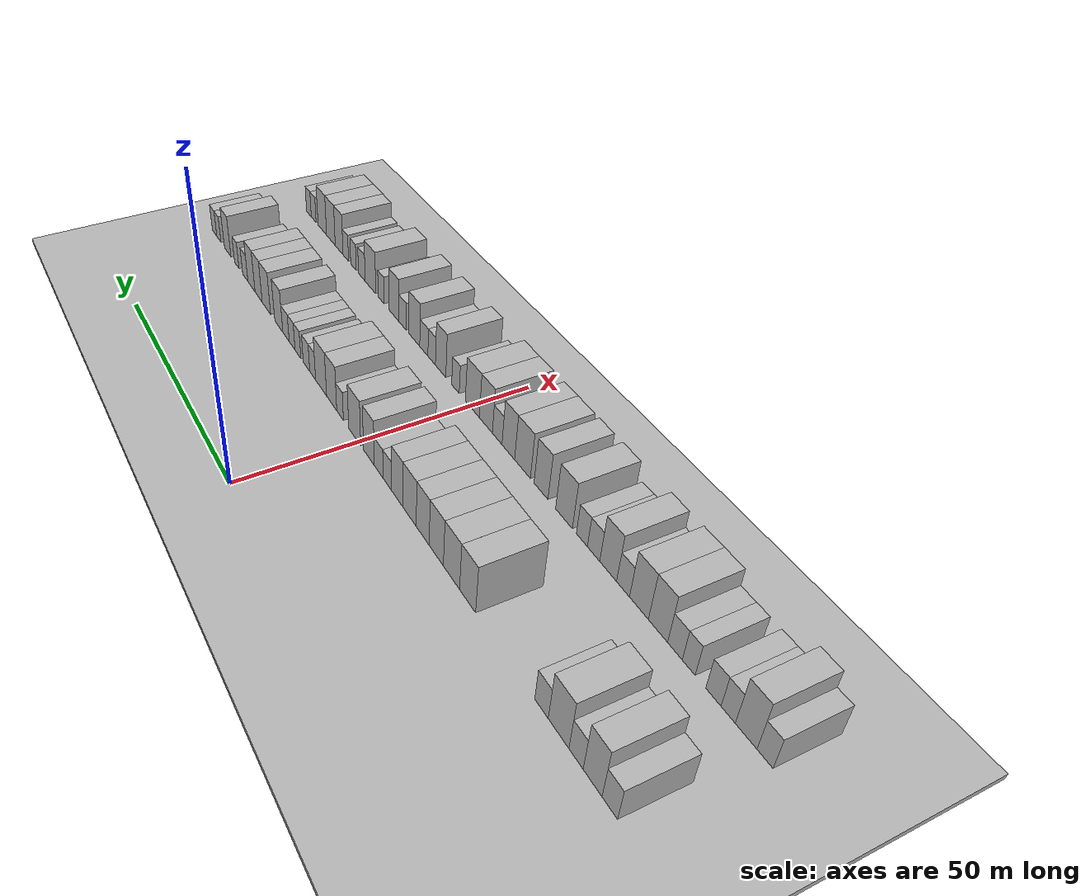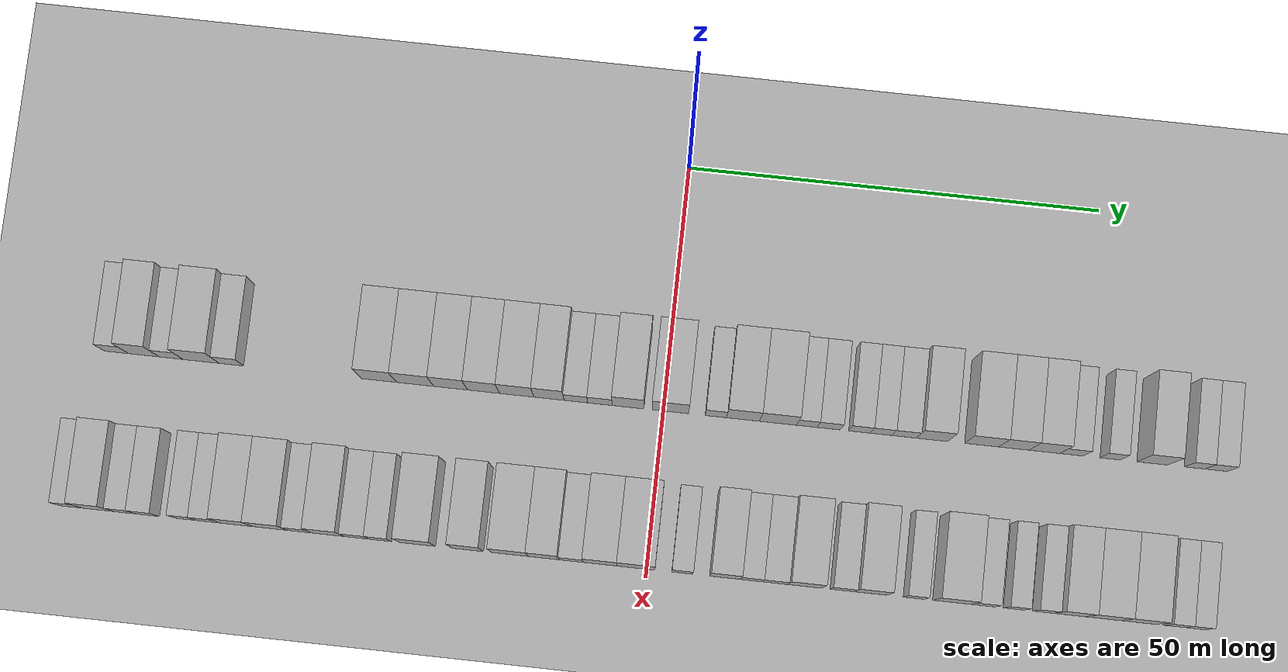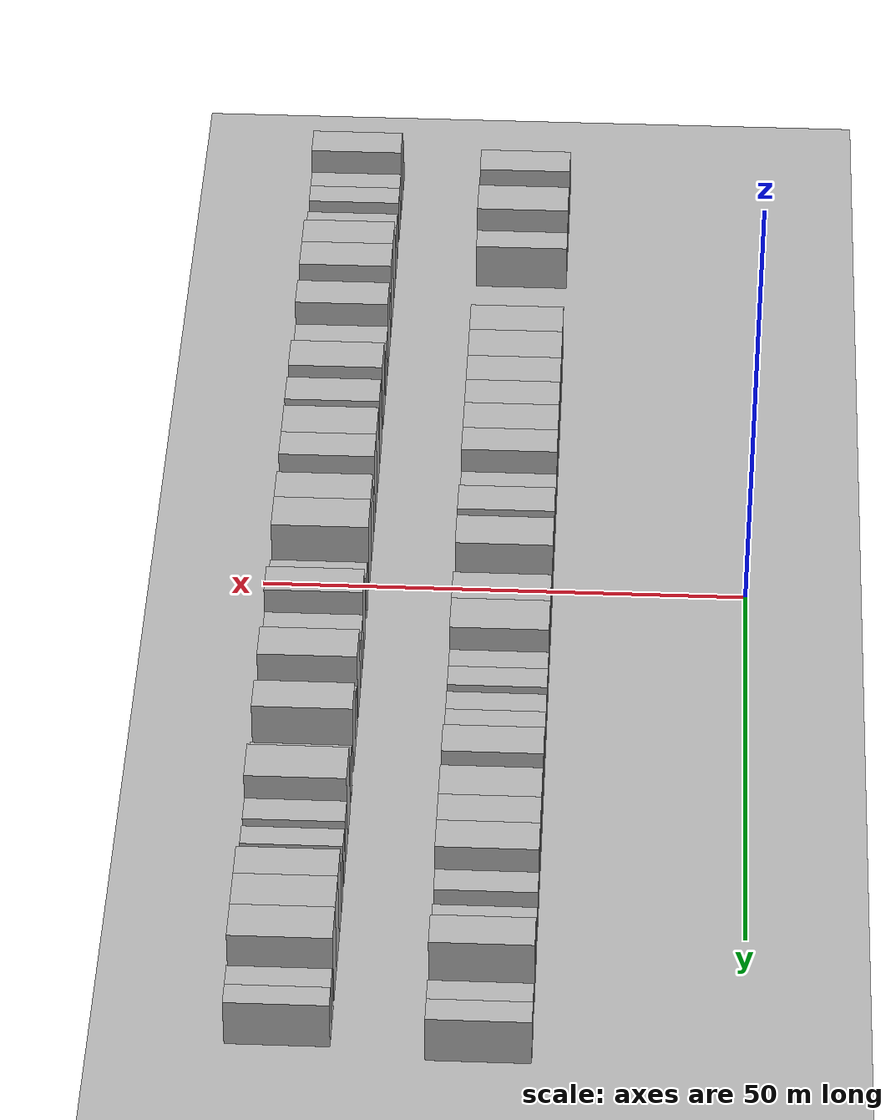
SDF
<sdf version="1.6">
 <world name="default">
  <include><name>ground_plane_1</name><uri>model://HANNAS_ground_plane</uri></include>
  <include>
   <name>ground_plane_2</name>
   <uri>model://HANNAS_ground_plane</uri>
   <pose>100 0 0  0 0 0</pose>
  </include>
  <model name="building_34">
   <static>1</static>
   <pose>25.0000 -66.1217 0 0.000000 0.000000 0.000000</pose>
   <link name="link">
    <pose>0 0 3.00 0 0 0</pose>
    <collision name="collision"><geometry><box><size>10.0000 2.9249 6.0000</size></box></geometry></collision>
    <visual name="visual">
     <cast_shadows>0</cast_shadows>
     <geometry><box><size>10.0000 2.9249 6.0000</size></box></geometry>
     <material>
      <script>
       <uri>model://HANNAS_wall/materials/scripts</uri>
       <uri>model://HANNAS_wall/materials/textures</uri>
       <name>vrc/HANNAS_wall</name>
      </script>
     </material>
    </visual>
   </link>
  </model>
  <model name="building_35">
   <static>1</static>
   <pose>25.0000 -62.8063 0 0.000000 0.000000 0.000000</pose>
   <link name="link">
    <pose>0 0 4.50 0 0 0</pose>
    <collision name="collision"><geometry><box><size>10.0000 3.7059 9.0000</size></box></geometry></collision>
    <visual name="visual">
     <cast_shadows>0</cast_shadows>
     <geometry><box><size>10.0000 3.7059 9.0000</size></box></geometry>
     <material>
      <script>
       <uri>model://HANNAS_wall/materials/scripts</uri>
       <uri>model://HANNAS_wall/materials/textures</uri>
       <name>vrc/HANNAS_wall</name>
      </script>
     </material>
    </visual>
   </link>
  </model>
  <model name="building_36">
   <static>1</static>
   <pose>25.0000 -59.5107 0 0.000000 0.000000 0.000000</pose>
   <link name="link">
    <pose>0 0 3.00 0 0 0</pose>
    <collision name="collision"><geometry><box><size>10.0000 2.8853 6.0000</size></box></geometry></collision>
    <visual name="visual">
     <cast_shadows>0</cast_shadows>
     <geometry><box><size>10.0000 2.8853 6.0000</size></box></geometry>
     <material>
      <script>
       <uri>model://HANNAS_wall/materials/scripts</uri>
       <uri>model://HANNAS_wall/materials/textures</uri>
       <name>vrc/HANNAS_wall</name>
      </script>
     </material>
    </visual>
   </link>
  </model>
  <model name="building_37">
   <static>1</static>
   <pose>25.0000 -55.8811 0 0.000000 0.000000 0.000000</pose>
   <link name="link">
    <pose>0 0 4.50 0 0 0</pose>
    <collision name="collision"><geometry><box><size>10.0000 4.3738 9.0000</size></box></geometry></collision>
    <visual name="visual">
     <cast_shadows>0</cast_shadows>
     <geometry><box><size>10.0000 4.3738 9.0000</size></box></geometry>
     <material>
      <script>
       <uri>model://HANNAS_wall/materials/scripts</uri>
       <uri>model://HANNAS_wall/materials/textures</uri>
       <name>vrc/HANNAS_wall</name>
      </script>
     </material>
    </visual>
   </link>
  </model>
  <model name="building_38">
   <static>1</static>
   <pose>25.0000 -52.2122 0 0.000000 0.000000 0.000000</pose>
   <link name="link">
    <pose>0 0 3.00 0 0 0</pose>
    <collision name="collision"><geometry><box><size>10.0000 2.9640 6.0000</size></box></geometry></collision>
    <visual name="visual">
     <cast_shadows>0</cast_shadows>
     <geometry><box><size>10.0000 2.9640 6.0000</size></box></geometry>
     <material>
      <script>
       <uri>model://HANNAS_wall/materials/scripts</uri>
       <uri>model://HANNAS_wall/materials/textures</uri>
       <name>vrc/HANNAS_wall</name>
      </script>
     </material>
    </visual>
   </link>
  </model>
  <model name="building_39">
   <static>1</static>
   <pose>25.0000 -34.3294 0 0.000000 0.000000 0.000000</pose>
   <link name="link">
    <pose>0 0 4.50 0 0 0</pose>
    <collision name="collision"><geometry><box><size>10.0000 4.2672 9.0000</size></box></geometry></collision>
    <visual name="visual">
     <cast_shadows>0</cast_shadows>
     <geometry><box><size>10.0000 4.2672 9.0000</size></box></geometry>
     <material>
      <script>
       <uri>model://HANNAS_wall/materials/scripts</uri>
       <uri>model://HANNAS_wall/materials/textures</uri>
       <name>vrc/HANNAS_wall</name>
      </script>
     </material>
    </visual>
   </link>
  </model>
  <model name="building_40">
   <static>1</static>
   <pose>25.0000 -29.9537 0 0.000000 0.000000 0.000000</pose>
   <link name="link">
    <pose>0 0 4.50 0 0 0</pose>
    <collision name="collision"><geometry><box><size>10.0000 4.4841 9.0000</size></box></geometry></collision>
    <visual name="visual">
     <cast_shadows>0</cast_shadows>
     <geometry><box><size>10.0000 4.4841 9.0000</size></box></geometry>
     <material>
      <script>
       <uri>model://HANNAS_wall/materials/scripts</uri>
       <uri>model://HANNAS_wall/materials/textures</uri>
       <name>vrc/HANNAS_wall</name>
      </script>
     </material>
    </visual>
   </link>
  </model>
  <model name="building_41">
   <static>1</static>
   <pose>25.0000 -25.6573 0 0.000000 0.000000 0.000000</pose>
   <link name="link">
    <pose>0 0 4.50 0 0 0</pose>
    <collision name="collision"><geometry><box><size>10.0000 4.1088 9.0000</size></box></geometry></collision>
    <visual name="visual">
     <cast_shadows>0</cast_shadows>
     <geometry><box><size>10.0000 4.1088 9.0000</size></box></geometry>
     <material>
      <script>
       <uri>model://HANNAS_wall/materials/scripts</uri>
       <uri>model://HANNAS_wall/materials/textures</uri>
       <name>vrc/HANNAS_wall</name>
      </script>
     </material>
    </visual>
   </link>
  </model>
  <model name="building_42">
   <static>1</static>
   <pose>25.0000 -21.6705 0 0.000000 0.000000 0.000000</pose>
   <link name="link">
    <pose>0 0 4.50 0 0 0</pose>
    <collision name="collision"><geometry><box><size>10.0000 3.8647 9.0000</size></box></geometry></collision>
    <visual name="visual">
     <cast_shadows>0</cast_shadows>
     <geometry><box><size>10.0000 3.8647 9.0000</size></box></geometry>
     <material>
      <script>
       <uri>model://HANNAS_wall/materials/scripts</uri>
       <uri>model://HANNAS_wall/materials/textures</uri>
       <name>vrc/HANNAS_wall</name>
      </script>
     </material>
    </visual>
   </link>
  </model>
  <model name="building_43">
   <static>1</static>
   <pose>25.0000 -17.6612 0 0.000000 0.000000 0.000000</pose>
   <link name="link">
    <pose>0 0 4.50 0 0 0</pose>
    <collision name="collision"><geometry><box><size>10.0000 4.1541 9.0000</size></box></geometry></collision>
    <visual name="visual">
     <cast_shadows>0</cast_shadows>
     <geometry><box><size>10.0000 4.1541 9.0000</size></box></geometry>
     <material>
      <script>
       <uri>model://HANNAS_wall/materials/scripts</uri>
       <uri>model://HANNAS_wall/materials/textures</uri>
       <name>vrc/HANNAS_wall</name>
      </script>
     </material>
    </visual>
   </link>
  </model>
  <model name="building_44">
   <static>1</static>
   <pose>25.0000 -13.7637 0 0.000000 0.000000 0.000000</pose>
   <link name="link">
    <pose>0 0 4.50 0 0 0</pose>
    <collision name="collision"><geometry><box><size>10.0000 3.6408 9.0000</size></box></geometry></collision>
    <visual name="visual">
     <cast_shadows>0</cast_shadows>
     <geometry><box><size>10.0000 3.6408 9.0000</size></box></geometry>
     <material>
      <script>
       <uri>model://HANNAS_wall/materials/scripts</uri>
       <uri>model://HANNAS_wall/materials/textures</uri>
       <name>vrc/HANNAS_wall</name>
      </script>
     </material>
    </visual>
   </link>
  </model>
  <model name="building_45">
   <static>1</static>
   <pose>25.0000 -10.5252 0 0.000000 0.000000 0.000000</pose>
   <link name="link">
    <pose>0 0 3.00 0 0 0</pose>
    <collision name="collision"><geometry><box><size>10.0000 2.8363 6.0000</size></box></geometry></collision>
    <visual name="visual">
     <cast_shadows>0</cast_shadows>
     <geometry><box><size>10.0000 2.8363 6.0000</size></box></geometry>
     <material>
      <script>
       <uri>model://HANNAS_wall/materials/scripts</uri>
       <uri>model://HANNAS_wall/materials/textures</uri>
       <name>vrc/HANNAS_wall</name>
      </script>
     </material>
    </visual>
   </link>
  </model>
  <model name="building_46">
   <static>1</static>
   <pose>25.0000 -7.6278 0 0.000000 0.000000 0.000000</pose>
   <link name="link">
    <pose>0 0 3.00 0 0 0</pose>
    <collision name="collision"><geometry><box><size>10.0000 2.9585 6.0000</size></box></geometry></collision>
    <visual name="visual">
     <cast_shadows>0</cast_shadows>
     <geometry><box><size>10.0000 2.9585 6.0000</size></box></geometry>
     <material>
      <script>
       <uri>model://HANNAS_wall/materials/scripts</uri>
       <uri>model://HANNAS_wall/materials/textures</uri>
       <name>vrc/HANNAS_wall</name>
      </script>
     </material>
    </visual>
   </link>
  </model>
  <model name="building_47">
   <static>1</static>
   <pose>25.0000 -4.2563 0 0.000000 0.000000 0.000000</pose>
   <link name="link">
    <pose>0 0 4.50 0 0 0</pose>
    <collision name="collision"><geometry><box><size>10.0000 3.7844 9.0000</size></box></geometry></collision>
    <visual name="visual">
     <cast_shadows>0</cast_shadows>
     <geometry><box><size>10.0000 3.7844 9.0000</size></box></geometry>
     <material>
      <script>
       <uri>model://HANNAS_wall/materials/scripts</uri>
       <uri>model://HANNAS_wall/materials/textures</uri>
       <name>vrc/HANNAS_wall</name>
      </script>
     </material>
    </visual>
   </link>
  </model>
  <model name="building_48">
   <static>1</static>
   <pose>25.0000 0.8295 0 0.000000 0.000000 0.000000</pose>
   <link name="link">
    <pose>0 0 4.50 0 0 0</pose>
    <collision name="collision"><geometry><box><size>10.0000 4.3873 9.0000</size></box></geometry></collision>
    <visual name="visual">
     <cast_shadows>0</cast_shadows>
     <geometry><box><size>10.0000 4.3873 9.0000</size></box></geometry>
     <material>
      <script>
       <uri>model://HANNAS_wall/materials/scripts</uri>
       <uri>model://HANNAS_wall/materials/textures</uri>
       <name>vrc/HANNAS_wall</name>
      </script>
     </material>
    </visual>
   </link>
  </model>
  <model name="building_49">
   <static>1</static>
   <pose>25.0000 6.2965 0 0.000000 0.000000 0.000000</pose>
   <link name="link">
    <pose>0 0 3.00 0 0 0</pose>
    <collision name="collision"><geometry><box><size>10.0000 2.5467 6.0000</size></box></geometry></collision>
    <visual name="visual">
     <cast_shadows>0</cast_shadows>
     <geometry><box><size>10.0000 2.5467 6.0000</size></box></geometry>
     <material>
      <script>
       <uri>model://HANNAS_wall/materials/scripts</uri>
       <uri>model://HANNAS_wall/materials/textures</uri>
       <name>vrc/HANNAS_wall</name>
      </script>
     </material>
    </visual>
   </link>
  </model>
  <model name="building_50">
   <static>1</static>
   <pose>25.0000 9.5672 0 0.000000 0.000000 0.000000</pose>
   <link name="link">
    <pose>0 0 4.50 0 0 0</pose>
    <collision name="collision"><geometry><box><size>10.0000 3.9947 9.0000</size></box></geometry></collision>
    <visual name="visual">
     <cast_shadows>0</cast_shadows>
     <geometry><box><size>10.0000 3.9947 9.0000</size></box></geometry>
     <material>
      <script>
       <uri>model://HANNAS_wall/materials/scripts</uri>
       <uri>model://HANNAS_wall/materials/textures</uri>
       <name>vrc/HANNAS_wall</name>
      </script>
     </material>
    </visual>
   </link>
  </model>
  <model name="building_51">
   <static>1</static>
   <pose>25.0000 13.7951 0 0.000000 0.000000 0.000000</pose>
   <link name="link">
    <pose>0 0 4.50 0 0 0</pose>
    <collision name="collision"><geometry><box><size>10.0000 4.4612 9.0000</size></box></geometry></collision>
    <visual name="visual">
     <cast_shadows>0</cast_shadows>
     <geometry><box><size>10.0000 4.4612 9.0000</size></box></geometry>
     <material>
      <script>
       <uri>model://HANNAS_wall/materials/scripts</uri>
       <uri>model://HANNAS_wall/materials/textures</uri>
       <name>vrc/HANNAS_wall</name>
      </script>
     </material>
    </visual>
   </link>
  </model>
  <model name="building_52">
   <static>1</static>
   <pose>25.0000 17.2621 0 0.000000 0.000000 0.000000</pose>
   <link name="link">
    <pose>0 0 3.00 0 0 0</pose>
    <collision name="collision"><geometry><box><size>10.0000 2.4728 6.0000</size></box></geometry></collision>
    <visual name="visual">
     <cast_shadows>0</cast_shadows>
     <geometry><box><size>10.0000 2.4728 6.0000</size></box></geometry>
     <material>
      <script>
       <uri>model://HANNAS_wall/materials/scripts</uri>
       <uri>model://HANNAS_wall/materials/textures</uri>
       <name>vrc/HANNAS_wall</name>
      </script>
     </material>
    </visual>
   </link>
  </model>
  <model name="building_53">
   <static>1</static>
   <pose>25.0000 19.8947 0 0.000000 0.000000 0.000000</pose>
   <link name="link">
    <pose>0 0 3.00 0 0 0</pose>
    <collision name="collision"><geometry><box><size>10.0000 2.7923 6.0000</size></box></geometry></collision>
    <visual name="visual">
     <cast_shadows>0</cast_shadows>
     <geometry><box><size>10.0000 2.7923 6.0000</size></box></geometry>
     <material>
      <script>
       <uri>model://HANNAS_wall/materials/scripts</uri>
       <uri>model://HANNAS_wall/materials/textures</uri>
       <name>vrc/HANNAS_wall</name>
      </script>
     </material>
    </visual>
   </link>
  </model>
  <model name="building_54">
   <static>1</static>
   <pose>25.0000 23.5818 0 0.000000 0.000000 0.000000</pose>
   <link name="link">
    <pose>0 0 3.00 0 0 0</pose>
    <collision name="collision"><geometry><box><size>10.0000 2.5820 6.0000</size></box></geometry></collision>
    <visual name="visual">
     <cast_shadows>0</cast_shadows>
     <geometry><box><size>10.0000 2.5820 6.0000</size></box></geometry>
     <material>
      <script>
       <uri>model://HANNAS_wall/materials/scripts</uri>
       <uri>model://HANNAS_wall/materials/textures</uri>
       <name>vrc/HANNAS_wall</name>
      </script>
     </material>
    </visual>
   </link>
  </model>
  <model name="building_55">
   <static>1</static>
   <pose>25.0000 26.1782 0 0.000000 0.000000 0.000000</pose>
   <link name="link">
    <pose>0 0 3.00 0 0 0</pose>
    <collision name="collision"><geometry><box><size>10.0000 2.6108 6.0000</size></box></geometry></collision>
    <visual name="visual">
     <cast_shadows>0</cast_shadows>
     <geometry><box><size>10.0000 2.6108 6.0000</size></box></geometry>
     <material>
      <script>
       <uri>model://HANNAS_wall/materials/scripts</uri>
       <uri>model://HANNAS_wall/materials/textures</uri>
       <name>vrc/HANNAS_wall</name>
      </script>
     </material>
    </visual>
   </link>
  </model>
  <model name="building_56">
   <static>1</static>
   <pose>25.0000 28.9518 0 0.000000 0.000000 0.000000</pose>
   <link name="link">
    <pose>0 0 3.00 0 0 0</pose>
    <collision name="collision"><geometry><box><size>10.0000 2.9364 6.0000</size></box></geometry></collision>
    <visual name="visual">
     <cast_shadows>0</cast_shadows>
     <geometry><box><size>10.0000 2.9364 6.0000</size></box></geometry>
     <material>
      <script>
       <uri>model://HANNAS_wall/materials/scripts</uri>
       <uri>model://HANNAS_wall/materials/textures</uri>
       <name>vrc/HANNAS_wall</name>
      </script>
     </material>
    </visual>
   </link>
  </model>
  <model name="building_57">
   <static>1</static>
   <pose>25.0000 32.3154 0 0.000000 0.000000 0.000000</pose>
   <link name="link">
    <pose>0 0 4.50 0 0 0</pose>
    <collision name="collision"><geometry><box><size>10.0000 3.7908 9.0000</size></box></geometry></collision>
    <visual name="visual">
     <cast_shadows>0</cast_shadows>
     <geometry><box><size>10.0000 3.7908 9.0000</size></box></geometry>
     <material>
      <script>
       <uri>model://HANNAS_wall/materials/scripts</uri>
       <uri>model://HANNAS_wall/materials/textures</uri>
       <name>vrc/HANNAS_wall</name>
      </script>
     </material>
    </visual>
   </link>
  </model>
  <model name="building_58">
   <static>1</static>
   <pose>25.0000 38.2663 0 0.000000 0.000000 0.000000</pose>
   <link name="link">
    <pose>0 0 4.50 0 0 0</pose>
    <collision name="collision"><geometry><box><size>10.0000 4.1110 9.0000</size></box></geometry></collision>
    <visual name="visual">
     <cast_shadows>0</cast_shadows>
     <geometry><box><size>10.0000 4.1110 9.0000</size></box></geometry>
     <material>
      <script>
       <uri>model://HANNAS_wall/materials/scripts</uri>
       <uri>model://HANNAS_wall/materials/textures</uri>
       <name>vrc/HANNAS_wall</name>
      </script>
     </material>
    </visual>
   </link>
  </model>
  <model name="building_59">
   <static>1</static>
   <pose>25.0000 42.1359 0 0.000000 0.000000 0.000000</pose>
   <link name="link">
    <pose>0 0 4.50 0 0 0</pose>
    <collision name="collision"><geometry><box><size>10.0000 3.6283 9.0000</size></box></geometry></collision>
    <visual name="visual">
     <cast_shadows>0</cast_shadows>
     <geometry><box><size>10.0000 3.6283 9.0000</size></box></geometry>
     <material>
      <script>
       <uri>model://HANNAS_wall/materials/scripts</uri>
       <uri>model://HANNAS_wall/materials/textures</uri>
       <name>vrc/HANNAS_wall</name>
      </script>
     </material>
    </visual>
   </link>
  </model>
  <model name="building_60">
   <static>1</static>
   <pose>25.0000 45.8025 0 0.000000 0.000000 0.000000</pose>
   <link name="link">
    <pose>0 0 4.50 0 0 0</pose>
    <collision name="collision"><geometry><box><size>10.0000 3.7048 9.0000</size></box></geometry></collision>
    <visual name="visual">
     <cast_shadows>0</cast_shadows>
     <geometry><box><size>10.0000 3.7048 9.0000</size></box></geometry>
     <material>
      <script>
       <uri>model://HANNAS_wall/materials/scripts</uri>
       <uri>model://HANNAS_wall/materials/textures</uri>
       <name>vrc/HANNAS_wall</name>
      </script>
     </material>
    </visual>
   </link>
  </model>
  <model name="building_61">
   <static>1</static>
   <pose>25.0000 49.0504 0 0.000000 0.000000 0.000000</pose>
   <link name="link">
    <pose>0 0 3.00 0 0 0</pose>
    <collision name="collision"><geometry><box><size>10.0000 2.7910 6.0000</size></box></geometry></collision>
    <visual name="visual">
     <cast_shadows>0</cast_shadows>
     <geometry><box><size>10.0000 2.7910 6.0000</size></box></geometry>
     <material>
      <script>
       <uri>model://HANNAS_wall/materials/scripts</uri>
       <uri>model://HANNAS_wall/materials/textures</uri>
       <name>vrc/HANNAS_wall</name>
      </script>
     </material>
    </visual>
   </link>
  </model>
  <model name="building_62">
   <static>1</static>
   <pose>25.0000 53.6523 0 0.000000 0.000000 0.000000</pose>
   <link name="link">
    <pose>0 0 3.00 0 0 0</pose>
    <collision name="collision"><geometry><box><size>10.0000 2.4130 6.0000</size></box></geometry></collision>
    <visual name="visual">
     <cast_shadows>0</cast_shadows>
     <geometry><box><size>10.0000 2.4130 6.0000</size></box></geometry>
     <material>
      <script>
       <uri>model://HANNAS_wall/materials/scripts</uri>
       <uri>model://HANNAS_wall/materials/textures</uri>
       <name>vrc/HANNAS_wall</name>
      </script>
     </material>
    </visual>
   </link>
  </model>
  <model name="building_63">
   <static>1</static>
   <pose>25.0000 58.6993 0 0.000000 0.000000 0.000000</pose>
   <link name="link">
    <pose>0 0 4.50 0 0 0</pose>
    <collision name="collision"><geometry><box><size>10.0000 3.6810 9.0000</size></box></geometry></collision>
    <visual name="visual">
     <cast_shadows>0</cast_shadows>
     <geometry><box><size>10.0000 3.6810 9.0000</size></box></geometry>
     <material>
      <script>
       <uri>model://HANNAS_wall/materials/scripts</uri>
       <uri>model://HANNAS_wall/materials/textures</uri>
       <name>vrc/HANNAS_wall</name>
      </script>
     </material>
    </visual>
   </link>
  </model>
  <model name="building_64">
   <static>1</static>
   <pose>25.0000 63.7646 0 0.000000 0.000000 0.000000</pose>
   <link name="link">
    <pose>0 0 3.00 0 0 0</pose>
    <collision name="collision"><geometry><box><size>10.0000 2.4495 6.0000</size></box></geometry></collision>
    <visual name="visual">
     <cast_shadows>0</cast_shadows>
     <geometry><box><size>10.0000 2.4495 6.0000</size></box></geometry>
     <material>
      <script>
       <uri>model://HANNAS_wall/materials/scripts</uri>
       <uri>model://HANNAS_wall/materials/textures</uri>
       <name>vrc/HANNAS_wall</name>
      </script>
     </material>
    </visual>
   </link>
  </model>
  <model name="building_65">
   <static>1</static>
   <pose>25.0000 66.3241 0 0.000000 0.000000 0.000000</pose>
   <link name="link">
    <pose>0 0 3.00 0 0 0</pose>
    <collision name="collision"><geometry><box><size>10.0000 2.6696 6.0000</size></box></geometry></collision>
    <visual name="visual">
     <cast_shadows>0</cast_shadows>
     <geometry><box><size>10.0000 2.6696 6.0000</size></box></geometry>
     <material>
      <script>
       <uri>model://HANNAS_wall/materials/scripts</uri>
       <uri>model://HANNAS_wall/materials/textures</uri>
       <name>vrc/HANNAS_wall</name>
      </script>
     </material>
    </visual>
   </link>
  </model>
  <model name="building_134">
   <static>1</static>
   <pose>44.0000 -68.7656 0 0.000000 0.000000 0.000000</pose>
   <link name="link">
    <pose>0 0 3.00 0 0 0</pose>
    <collision name="collision"><geometry><box><size>10.0000 2.6950 6.0000</size></box></geometry></collision>
    <visual name="visual">
     <cast_shadows>0</cast_shadows>
     <geometry><box><size>10.0000 2.6950 6.0000</size></box></geometry>
     <material>
      <script>
       <uri>model://HANNAS_wall/materials/scripts</uri>
       <uri>model://HANNAS_wall/materials/textures</uri>
       <name>vrc/HANNAS_wall</name>
      </script>
     </material>
    </visual>
   </link>
  </model>
  <model name="building_135">
   <static>1</static>
   <pose>44.0000 -65.5446 0 0.000000 0.000000 0.000000</pose>
   <link name="link">
    <pose>0 0 4.50 0 0 0</pose>
    <collision name="collision"><geometry><box><size>10.0000 3.7471 9.0000</size></box></geometry></collision>
    <visual name="visual">
     <cast_shadows>0</cast_shadows>
     <geometry><box><size>10.0000 3.7471 9.0000</size></box></geometry>
     <material>
      <script>
       <uri>model://HANNAS_wall/materials/scripts</uri>
       <uri>model://HANNAS_wall/materials/textures</uri>
       <name>vrc/HANNAS_wall</name>
      </script>
     </material>
    </visual>
   </link>
  </model>
  <model name="building_136">
   <static>1</static>
   <pose>44.0000 -62.3908 0 0.000000 0.000000 0.000000</pose>
   <link name="link">
    <pose>0 0 3.00 0 0 0</pose>
    <collision name="collision"><geometry><box><size>10.0000 2.5605 6.0000</size></box></geometry></collision>
    <visual name="visual">
     <cast_shadows>0</cast_shadows>
     <geometry><box><size>10.0000 2.5605 6.0000</size></box></geometry>
     <material>
      <script>
       <uri>model://HANNAS_wall/materials/scripts</uri>
       <uri>model://HANNAS_wall/materials/textures</uri>
       <name>vrc/HANNAS_wall</name>
      </script>
     </material>
    </visual>
   </link>
  </model>
  <model name="building_137">
   <static>1</static>
   <pose>44.0000 -59.7030 0 0.000000 0.000000 0.000000</pose>
   <link name="link">
    <pose>0 0 3.00 0 0 0</pose>
    <collision name="collision"><geometry><box><size>10.0000 2.8149 6.0000</size></box></geometry></collision>
    <visual name="visual">
     <cast_shadows>0</cast_shadows>
     <geometry><box><size>10.0000 2.8149 6.0000</size></box></geometry>
     <material>
      <script>
       <uri>model://HANNAS_wall/materials/scripts</uri>
       <uri>model://HANNAS_wall/materials/textures</uri>
       <name>vrc/HANNAS_wall</name>
      </script>
     </material>
    </visual>
   </link>
  </model>
  <model name="building_138">
   <static>1</static>
   <pose>44.0000 -55.0456 0 0.000000 0.000000 0.000000</pose>
   <link name="link">
    <pose>0 0 3.00 0 0 0</pose>
    <collision name="collision"><geometry><box><size>10.0000 2.5000 6.0000</size></box></geometry></collision>
    <visual name="visual">
     <cast_shadows>0</cast_shadows>
     <geometry><box><size>10.0000 2.5000 6.0000</size></box></geometry>
     <material>
      <script>
       <uri>model://HANNAS_wall/materials/scripts</uri>
       <uri>model://HANNAS_wall/materials/textures</uri>
       <name>vrc/HANNAS_wall</name>
      </script>
     </material>
    </visual>
   </link>
  </model>
  <model name="building_139">
   <static>1</static>
   <pose>44.0000 -52.3253 0 0.000000 0.000000 0.000000</pose>
   <link name="link">
    <pose>0 0 3.00 0 0 0</pose>
    <collision name="collision"><geometry><box><size>10.0000 2.9405 6.0000</size></box></geometry></collision>
    <visual name="visual">
     <cast_shadows>0</cast_shadows>
     <geometry><box><size>10.0000 2.9405 6.0000</size></box></geometry>
     <material>
      <script>
       <uri>model://HANNAS_wall/materials/scripts</uri>
       <uri>model://HANNAS_wall/materials/textures</uri>
       <name>vrc/HANNAS_wall</name>
      </script>
     </material>
    </visual>
   </link>
  </model>
  <model name="building_140">
   <static>1</static>
   <pose>44.0000 -48.8803 0 0.000000 0.000000 0.000000</pose>
   <link name="link">
    <pose>0 0 4.50 0 0 0</pose>
    <collision name="collision"><geometry><box><size>10.0000 3.9496 9.0000</size></box></geometry></collision>
    <visual name="visual">
     <cast_shadows>0</cast_shadows>
     <geometry><box><size>10.0000 3.9496 9.0000</size></box></geometry>
     <material>
      <script>
       <uri>model://HANNAS_wall/materials/scripts</uri>
       <uri>model://HANNAS_wall/materials/textures</uri>
       <name>vrc/HANNAS_wall</name>
      </script>
     </material>
    </visual>
   </link>
  </model>
  <model name="building_141">
   <static>1</static>
   <pose>44.0000 -44.8725 0 0.000000 0.000000 0.000000</pose>
   <link name="link">
    <pose>0 0 4.50 0 0 0</pose>
    <collision name="collision"><geometry><box><size>10.0000 4.0660 9.0000</size></box></geometry></collision>
    <visual name="visual">
     <cast_shadows>0</cast_shadows>
     <geometry><box><size>10.0000 4.0660 9.0000</size></box></geometry>
     <material>
      <script>
       <uri>model://HANNAS_wall/materials/scripts</uri>
       <uri>model://HANNAS_wall/materials/textures</uri>
       <name>vrc/HANNAS_wall</name>
      </script>
     </material>
    </visual>
   </link>
  </model>
  <model name="building_142">
   <static>1</static>
   <pose>44.0000 -41.3963 0 0.000000 0.000000 0.000000</pose>
   <link name="link">
    <pose>0 0 3.00 0 0 0</pose>
    <collision name="collision"><geometry><box><size>10.0000 2.8863 6.0000</size></box></geometry></collision>
    <visual name="visual">
     <cast_shadows>0</cast_shadows>
     <geometry><box><size>10.0000 2.8863 6.0000</size></box></geometry>
     <material>
      <script>
       <uri>model://HANNAS_wall/materials/scripts</uri>
       <uri>model://HANNAS_wall/materials/textures</uri>
       <name>vrc/HANNAS_wall</name>
      </script>
     </material>
    </visual>
   </link>
  </model>
  <model name="building_143">
   <static>1</static>
   <pose>44.0000 -38.0158 0 0.000000 0.000000 0.000000</pose>
   <link name="link">
    <pose>0 0 4.50 0 0 0</pose>
    <collision name="collision"><geometry><box><size>10.0000 3.8747 9.0000</size></box></geometry></collision>
    <visual name="visual">
     <cast_shadows>0</cast_shadows>
     <geometry><box><size>10.0000 3.8747 9.0000</size></box></geometry>
     <material>
      <script>
       <uri>model://HANNAS_wall/materials/scripts</uri>
       <uri>model://HANNAS_wall/materials/textures</uri>
       <name>vrc/HANNAS_wall</name>
      </script>
     </material>
    </visual>
   </link>
  </model>
  <model name="building_144">
   <static>1</static>
   <pose>44.0000 -34.6136 0 0.000000 0.000000 0.000000</pose>
   <link name="link">
    <pose>0 0 3.00 0 0 0</pose>
    <collision name="collision"><geometry><box><size>10.0000 2.9296 6.0000</size></box></geometry></collision>
    <visual name="visual">
     <cast_shadows>0</cast_shadows>
     <geometry><box><size>10.0000 2.9296 6.0000</size></box></geometry>
     <material>
      <script>
       <uri>model://HANNAS_wall/materials/scripts</uri>
       <uri>model://HANNAS_wall/materials/textures</uri>
       <name>vrc/HANNAS_wall</name>
      </script>
     </material>
    </visual>
   </link>
  </model>
  <model name="building_145">
   <static>1</static>
   <pose>44.0000 -31.8046 0 0.000000 0.000000 0.000000</pose>
   <link name="link">
    <pose>0 0 3.00 0 0 0</pose>
    <collision name="collision"><geometry><box><size>10.0000 2.6884 6.0000</size></box></geometry></collision>
    <visual name="visual">
     <cast_shadows>0</cast_shadows>
     <geometry><box><size>10.0000 2.6884 6.0000</size></box></geometry>
     <material>
      <script>
       <uri>model://HANNAS_wall/materials/scripts</uri>
       <uri>model://HANNAS_wall/materials/textures</uri>
       <name>vrc/HANNAS_wall</name>
      </script>
     </material>
    </visual>
   </link>
  </model>
  <model name="building_146">
   <static>1</static>
   <pose>44.0000 -27.3293 0 0.000000 0.000000 0.000000</pose>
   <link name="link">
    <pose>0 0 4.50 0 0 0</pose>
    <collision name="collision"><geometry><box><size>10.0000 4.2624 9.0000</size></box></geometry></collision>
    <visual name="visual">
     <cast_shadows>0</cast_shadows>
     <geometry><box><size>10.0000 4.2624 9.0000</size></box></geometry>
     <material>
      <script>
       <uri>model://HANNAS_wall/materials/scripts</uri>
       <uri>model://HANNAS_wall/materials/textures</uri>
       <name>vrc/HANNAS_wall</name>
      </script>
     </material>
    </visual>
   </link>
  </model>
  <model name="building_147">
   <static>1</static>
   <pose>44.0000 -21.3295 0 0.000000 0.000000 0.000000</pose>
   <link name="link">
    <pose>0 0 4.50 0 0 0</pose>
    <collision name="collision"><geometry><box><size>10.0000 3.7372 9.0000</size></box></geometry></collision>
    <visual name="visual">
     <cast_shadows>0</cast_shadows>
     <geometry><box><size>10.0000 3.7372 9.0000</size></box></geometry>
     <material>
      <script>
       <uri>model://HANNAS_wall/materials/scripts</uri>
       <uri>model://HANNAS_wall/materials/textures</uri>
       <name>vrc/HANNAS_wall</name>
      </script>
     </material>
    </visual>
   </link>
  </model>
  <model name="building_148">
   <static>1</static>
   <pose>44.0000 -16.2479 0 0.000000 0.000000 0.000000</pose>
   <link name="link">
    <pose>0 0 4.50 0 0 0</pose>
    <collision name="collision"><geometry><box><size>10.0000 4.4260 9.0000</size></box></geometry></collision>
    <visual name="visual">
     <cast_shadows>0</cast_shadows>
     <geometry><box><size>10.0000 4.4260 9.0000</size></box></geometry>
     <material>
      <script>
       <uri>model://HANNAS_wall/materials/scripts</uri>
       <uri>model://HANNAS_wall/materials/textures</uri>
       <name>vrc/HANNAS_wall</name>
      </script>
     </material>
    </visual>
   </link>
  </model>
  <model name="building_149">
   <static>1</static>
   <pose>44.0000 -12.1952 0 0.000000 0.000000 0.000000</pose>
   <link name="link">
    <pose>0 0 4.50 0 0 0</pose>
    <collision name="collision"><geometry><box><size>10.0000 3.6794 9.0000</size></box></geometry></collision>
    <visual name="visual">
     <cast_shadows>0</cast_shadows>
     <geometry><box><size>10.0000 3.6794 9.0000</size></box></geometry>
     <material>
      <script>
       <uri>model://HANNAS_wall/materials/scripts</uri>
       <uri>model://HANNAS_wall/materials/textures</uri>
       <name>vrc/HANNAS_wall</name>
      </script>
     </material>
    </visual>
   </link>
  </model>
  <model name="building_150">
   <static>1</static>
   <pose>44.0000 -8.9162 0 0.000000 0.000000 0.000000</pose>
   <link name="link">
    <pose>0 0 3.00 0 0 0</pose>
    <collision name="collision"><geometry><box><size>10.0000 2.8785 6.0000</size></box></geometry></collision>
    <visual name="visual">
     <cast_shadows>0</cast_shadows>
     <geometry><box><size>10.0000 2.8785 6.0000</size></box></geometry>
     <material>
      <script>
       <uri>model://HANNAS_wall/materials/scripts</uri>
       <uri>model://HANNAS_wall/materials/textures</uri>
       <name>vrc/HANNAS_wall</name>
      </script>
     </material>
    </visual>
   </link>
  </model>
  <model name="building_151">
   <static>1</static>
   <pose>44.0000 -5.4687 0 0.000000 0.000000 0.000000</pose>
   <link name="link">
    <pose>0 0 4.50 0 0 0</pose>
    <collision name="collision"><geometry><box><size>10.0000 4.0165 9.0000</size></box></geometry></collision>
    <visual name="visual">
     <cast_shadows>0</cast_shadows>
     <geometry><box><size>10.0000 4.0165 9.0000</size></box></geometry>
     <material>
      <script>
       <uri>model://HANNAS_wall/materials/scripts</uri>
       <uri>model://HANNAS_wall/materials/textures</uri>
       <name>vrc/HANNAS_wall</name>
      </script>
     </material>
    </visual>
   </link>
  </model>
  <model name="building_152">
   <static>1</static>
   <pose>44.0000 -1.2208 0 0.000000 0.000000 0.000000</pose>
   <link name="link">
    <pose>0 0 4.50 0 0 0</pose>
    <collision name="collision"><geometry><box><size>10.0000 4.4793 9.0000</size></box></geometry></collision>
    <visual name="visual">
     <cast_shadows>0</cast_shadows>
     <geometry><box><size>10.0000 4.4793 9.0000</size></box></geometry>
     <material>
      <script>
       <uri>model://HANNAS_wall/materials/scripts</uri>
       <uri>model://HANNAS_wall/materials/textures</uri>
       <name>vrc/HANNAS_wall</name>
      </script>
     </material>
    </visual>
   </link>
  </model>
  <model name="building_153">
   <static>1</static>
   <pose>44.0000 4.2723 0 0.000000 0.000000 0.000000</pose>
   <link name="link">
    <pose>0 0 3.00 0 0 0</pose>
    <collision name="collision"><geometry><box><size>10.0000 2.5069 6.0000</size></box></geometry></collision>
    <visual name="visual">
     <cast_shadows>0</cast_shadows>
     <geometry><box><size>10.0000 2.5069 6.0000</size></box></geometry>
     <material>
      <script>
       <uri>model://HANNAS_wall/materials/scripts</uri>
       <uri>model://HANNAS_wall/materials/textures</uri>
       <name>vrc/HANNAS_wall</name>
      </script>
     </material>
    </visual>
   </link>
  </model>
  <model name="building_154">
   <static>1</static>
   <pose>44.0000 9.3346 0 0.000000 0.000000 0.000000</pose>
   <link name="link">
    <pose>0 0 4.50 0 0 0</pose>
    <collision name="collision"><geometry><box><size>10.0000 3.6176 9.0000</size></box></geometry></collision>
    <visual name="visual">
     <cast_shadows>0</cast_shadows>
     <geometry><box><size>10.0000 3.6176 9.0000</size></box></geometry>
     <material>
      <script>
       <uri>model://HANNAS_wall/materials/scripts</uri>
       <uri>model://HANNAS_wall/materials/textures</uri>
       <name>vrc/HANNAS_wall</name>
      </script>
     </material>
    </visual>
   </link>
  </model>
  <model name="building_155">
   <static>1</static>
   <pose>44.0000 12.4798 0 0.000000 0.000000 0.000000</pose>
   <link name="link">
    <pose>0 0 3.00 0 0 0</pose>
    <collision name="collision"><geometry><box><size>10.0000 2.6728 6.0000</size></box></geometry></collision>
    <visual name="visual">
     <cast_shadows>0</cast_shadows>
     <geometry><box><size>10.0000 2.6728 6.0000</size></box></geometry>
     <material>
      <script>
       <uri>model://HANNAS_wall/materials/scripts</uri>
       <uri>model://HANNAS_wall/materials/textures</uri>
       <name>vrc/HANNAS_wall</name>
      </script>
     </material>
    </visual>
   </link>
  </model>
  <model name="building_156">
   <static>1</static>
   <pose>44.0000 15.2992 0 0.000000 0.000000 0.000000</pose>
   <link name="link">
    <pose>0 0 3.00 0 0 0</pose>
    <collision name="collision"><geometry><box><size>10.0000 2.9660 6.0000</size></box></geometry></collision>
    <visual name="visual">
     <cast_shadows>0</cast_shadows>
     <geometry><box><size>10.0000 2.9660 6.0000</size></box></geometry>
     <material>
      <script>
       <uri>model://HANNAS_wall/materials/scripts</uri>
       <uri>model://HANNAS_wall/materials/textures</uri>
       <name>vrc/HANNAS_wall</name>
      </script>
     </material>
    </visual>
   </link>
  </model>
  <model name="building_157">
   <static>1</static>
   <pose>44.0000 18.8322 0 0.000000 0.000000 0.000000</pose>
   <link name="link">
    <pose>0 0 4.50 0 0 0</pose>
    <collision name="collision"><geometry><box><size>10.0000 4.0999 9.0000</size></box></geometry></collision>
    <visual name="visual">
     <cast_shadows>0</cast_shadows>
     <geometry><box><size>10.0000 4.0999 9.0000</size></box></geometry>
     <material>
      <script>
       <uri>model://HANNAS_wall/materials/scripts</uri>
       <uri>model://HANNAS_wall/materials/textures</uri>
       <name>vrc/HANNAS_wall</name>
      </script>
     </material>
    </visual>
   </link>
  </model>
  <model name="building_158">
   <static>1</static>
   <pose>44.0000 23.3084 0 0.000000 0.000000 0.000000</pose>
   <link name="link">
    <pose>0 0 3.00 0 0 0</pose>
    <collision name="collision"><geometry><box><size>10.0000 2.8526 6.0000</size></box></geometry></collision>
    <visual name="visual">
     <cast_shadows>0</cast_shadows>
     <geometry><box><size>10.0000 2.8526 6.0000</size></box></geometry>
     <material>
      <script>
       <uri>model://HANNAS_wall/materials/scripts</uri>
       <uri>model://HANNAS_wall/materials/textures</uri>
       <name>vrc/HANNAS_wall</name>
      </script>
     </material>
    </visual>
   </link>
  </model>
  <model name="building_159">
   <static>1</static>
   <pose>44.0000 26.6647 0 0.000000 0.000000 0.000000</pose>
   <link name="link">
    <pose>0 0 4.50 0 0 0</pose>
    <collision name="collision"><geometry><box><size>10.0000 3.8602 9.0000</size></box></geometry></collision>
    <visual name="visual">
     <cast_shadows>0</cast_shadows>
     <geometry><box><size>10.0000 3.8602 9.0000</size></box></geometry>
     <material>
      <script>
       <uri>model://HANNAS_wall/materials/scripts</uri>
       <uri>model://HANNAS_wall/materials/textures</uri>
       <name>vrc/HANNAS_wall</name>
      </script>
     </material>
    </visual>
   </link>
  </model>
  <model name="building_160">
   <static>1</static>
   <pose>44.0000 31.8379 0 0.000000 0.000000 0.000000</pose>
   <link name="link">
    <pose>0 0 3.00 0 0 0</pose>
    <collision name="collision"><geometry><box><size>10.0000 2.4862 6.0000</size></box></geometry></collision>
    <visual name="visual">
     <cast_shadows>0</cast_shadows>
     <geometry><box><size>10.0000 2.4862 6.0000</size></box></geometry>
     <material>
      <script>
       <uri>model://HANNAS_wall/materials/scripts</uri>
       <uri>model://HANNAS_wall/materials/textures</uri>
       <name>vrc/HANNAS_wall</name>
      </script>
     </material>
    </visual>
   </link>
  </model>
  <model name="building_161">
   <static>1</static>
   <pose>44.0000 36.3279 0 0.000000 0.000000 0.000000</pose>
   <link name="link">
    <pose>0 0 4.50 0 0 0</pose>
    <collision name="collision"><geometry><box><size>10.0000 4.4938 9.0000</size></box></geometry></collision>
    <visual name="visual">
     <cast_shadows>0</cast_shadows>
     <geometry><box><size>10.0000 4.4938 9.0000</size></box></geometry>
     <material>
      <script>
       <uri>model://HANNAS_wall/materials/scripts</uri>
       <uri>model://HANNAS_wall/materials/textures</uri>
       <name>vrc/HANNAS_wall</name>
      </script>
     </material>
    </visual>
   </link>
  </model>
  <model name="building_162">
   <static>1</static>
   <pose>44.0000 40.0306 0 0.000000 0.000000 0.000000</pose>
   <link name="link">
    <pose>0 0 3.00 0 0 0</pose>
    <collision name="collision"><geometry><box><size>10.0000 2.9116 6.0000</size></box></geometry></collision>
    <visual name="visual">
     <cast_shadows>0</cast_shadows>
     <geometry><box><size>10.0000 2.9116 6.0000</size></box></geometry>
     <material>
      <script>
       <uri>model://HANNAS_wall/materials/scripts</uri>
       <uri>model://HANNAS_wall/materials/textures</uri>
       <name>vrc/HANNAS_wall</name>
      </script>
     </material>
    </visual>
   </link>
  </model>
  <model name="building_163">
   <static>1</static>
   <pose>44.0000 43.7037 0 0.000000 0.000000 0.000000</pose>
   <link name="link">
    <pose>0 0 3.00 0 0 0</pose>
    <collision name="collision"><geometry><box><size>10.0000 2.4346 6.0000</size></box></geometry></collision>
    <visual name="visual">
     <cast_shadows>0</cast_shadows>
     <geometry><box><size>10.0000 2.4346 6.0000</size></box></geometry>
     <material>
      <script>
       <uri>model://HANNAS_wall/materials/scripts</uri>
       <uri>model://HANNAS_wall/materials/textures</uri>
       <name>vrc/HANNAS_wall</name>
      </script>
     </material>
    </visual>
   </link>
  </model>
  <model name="building_164">
   <static>1</static>
   <pose>44.0000 47.1734 0 0.000000 0.000000 0.000000</pose>
   <link name="link">
    <pose>0 0 3.00 0 0 0</pose>
    <collision name="collision"><geometry><box><size>10.0000 2.5046 6.0000</size></box></geometry></collision>
    <visual name="visual">
     <cast_shadows>0</cast_shadows>
     <geometry><box><size>10.0000 2.5046 6.0000</size></box></geometry>
     <material>
      <script>
       <uri>model://HANNAS_wall/materials/scripts</uri>
       <uri>model://HANNAS_wall/materials/textures</uri>
       <name>vrc/HANNAS_wall</name>
      </script>
     </material>
    </visual>
   </link>
  </model>
  <model name="building_165">
   <static>1</static>
   <pose>44.0000 50.2541 0 0.000000 0.000000 0.000000</pose>
   <link name="link">
    <pose>0 0 4.50 0 0 0</pose>
    <collision name="collision"><geometry><box><size>10.0000 3.6569 9.0000</size></box></geometry></collision>
    <visual name="visual">
     <cast_shadows>0</cast_shadows>
     <geometry><box><size>10.0000 3.6569 9.0000</size></box></geometry>
     <material>
      <script>
       <uri>model://HANNAS_wall/materials/scripts</uri>
       <uri>model://HANNAS_wall/materials/textures</uri>
       <name>vrc/HANNAS_wall</name>
      </script>
     </material>
    </visual>
   </link>
  </model>
  <model name="building_166">
   <static>1</static>
   <pose>44.0000 54.1669 0 0.000000 0.000000 0.000000</pose>
   <link name="link">
    <pose>0 0 4.50 0 0 0</pose>
    <collision name="collision"><geometry><box><size>10.0000 4.1686 9.0000</size></box></geometry></collision>
    <visual name="visual">
     <cast_shadows>0</cast_shadows>
     <geometry><box><size>10.0000 4.1686 9.0000</size></box></geometry>
     <material>
      <script>
       <uri>model://HANNAS_wall/materials/scripts</uri>
       <uri>model://HANNAS_wall/materials/textures</uri>
       <name>vrc/HANNAS_wall</name>
      </script>
     </material>
    </visual>
   </link>
  </model>
  <model name="building_167">
   <static>1</static>
   <pose>44.0000 58.3489 0 0.000000 0.000000 0.000000</pose>
   <link name="link">
    <pose>0 0 4.50 0 0 0</pose>
    <collision name="collision"><geometry><box><size>10.0000 4.1954 9.0000</size></box></geometry></collision>
    <visual name="visual">
     <cast_shadows>0</cast_shadows>
     <geometry><box><size>10.0000 4.1954 9.0000</size></box></geometry>
     <material>
      <script>
       <uri>model://HANNAS_wall/materials/scripts</uri>
       <uri>model://HANNAS_wall/materials/textures</uri>
       <name>vrc/HANNAS_wall</name>
      </script>
     </material>
    </visual>
   </link>
  </model>
  <model name="building_168">
   <static>1</static>
   <pose>44.0000 62.6755 0 0.000000 0.000000 0.000000</pose>
   <link name="link">
    <pose>0 0 3.00 0 0 0</pose>
    <collision name="collision"><geometry><box><size>10.0000 2.4578 6.0000</size></box></geometry></collision>
    <visual name="visual">
     <cast_shadows>0</cast_shadows>
     <geometry><box><size>10.0000 2.4578 6.0000</size></box></geometry>
     <material>
      <script>
       <uri>model://HANNAS_wall/materials/scripts</uri>
       <uri>model://HANNAS_wall/materials/textures</uri>
       <name>vrc/HANNAS_wall</name>
      </script>
     </material>
    </visual>
   </link>
  </model>
  <model name="building_169">
   <static>1</static>
   <pose>44.0000 65.1095 0 0.000000 0.000000 0.000000</pose>
   <link name="link">
    <pose>0 0 3.00 0 0 0</pose>
    <collision name="collision"><geometry><box><size>10.0000 2.4103 6.0000</size></box></geometry></collision>
    <visual name="visual">
     <cast_shadows>0</cast_shadows>
     <geometry><box><size>10.0000 2.4103 6.0000</size></box></geometry>
     <material>
      <script>
       <uri>model://HANNAS_wall/materials/scripts</uri>
       <uri>model://HANNAS_wall/materials/textures</uri>
       <name>vrc/HANNAS_wall</name>
      </script>
     </material>
    </visual>
   </link>
  </model>
 </world>
</sdf>
